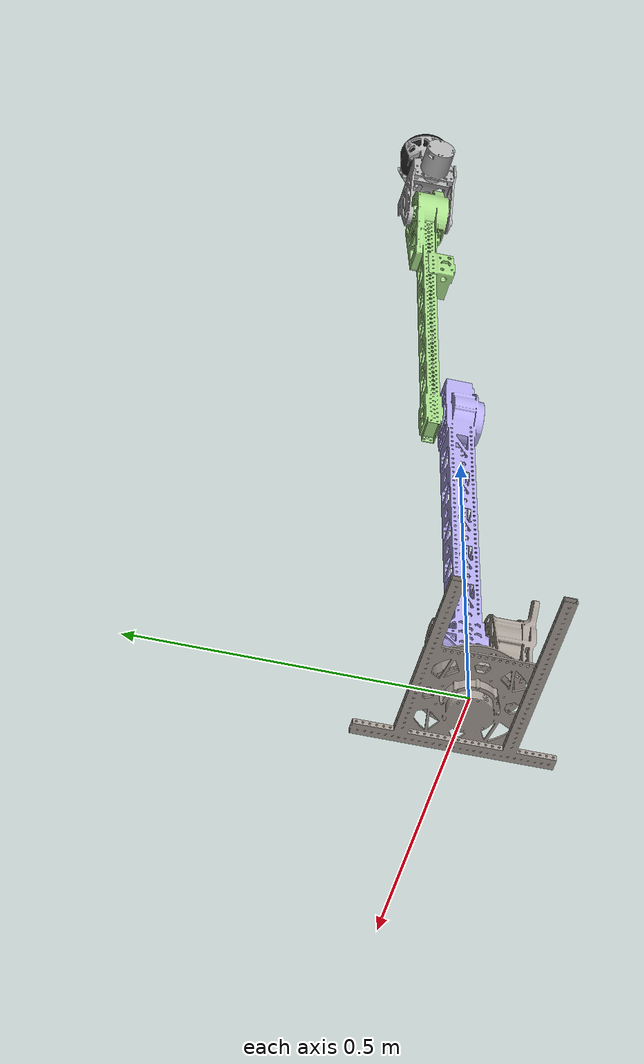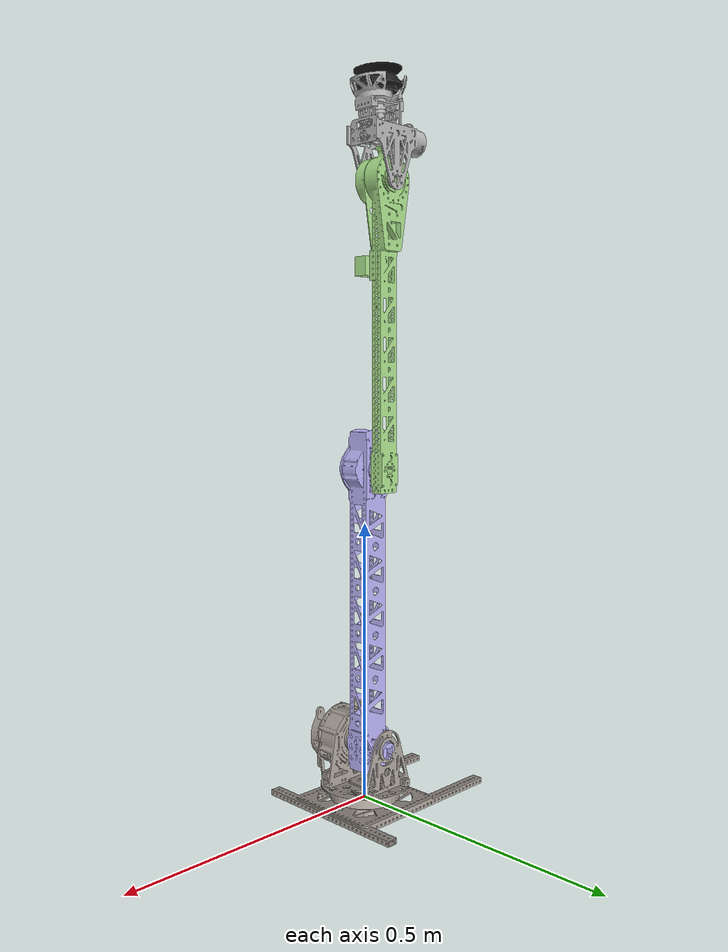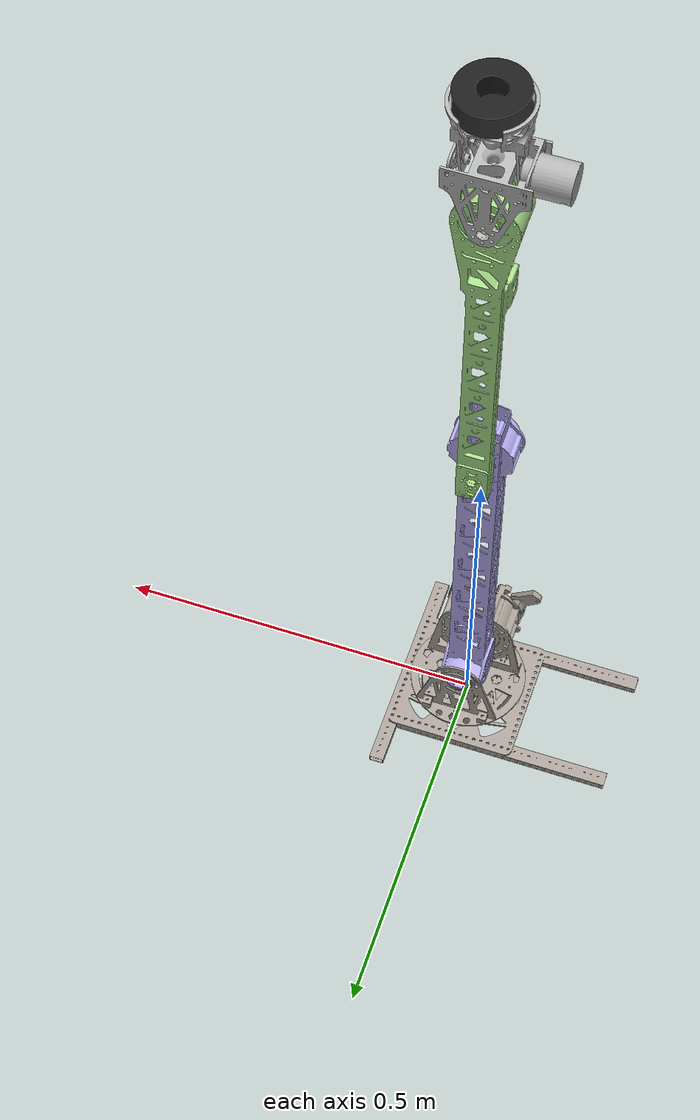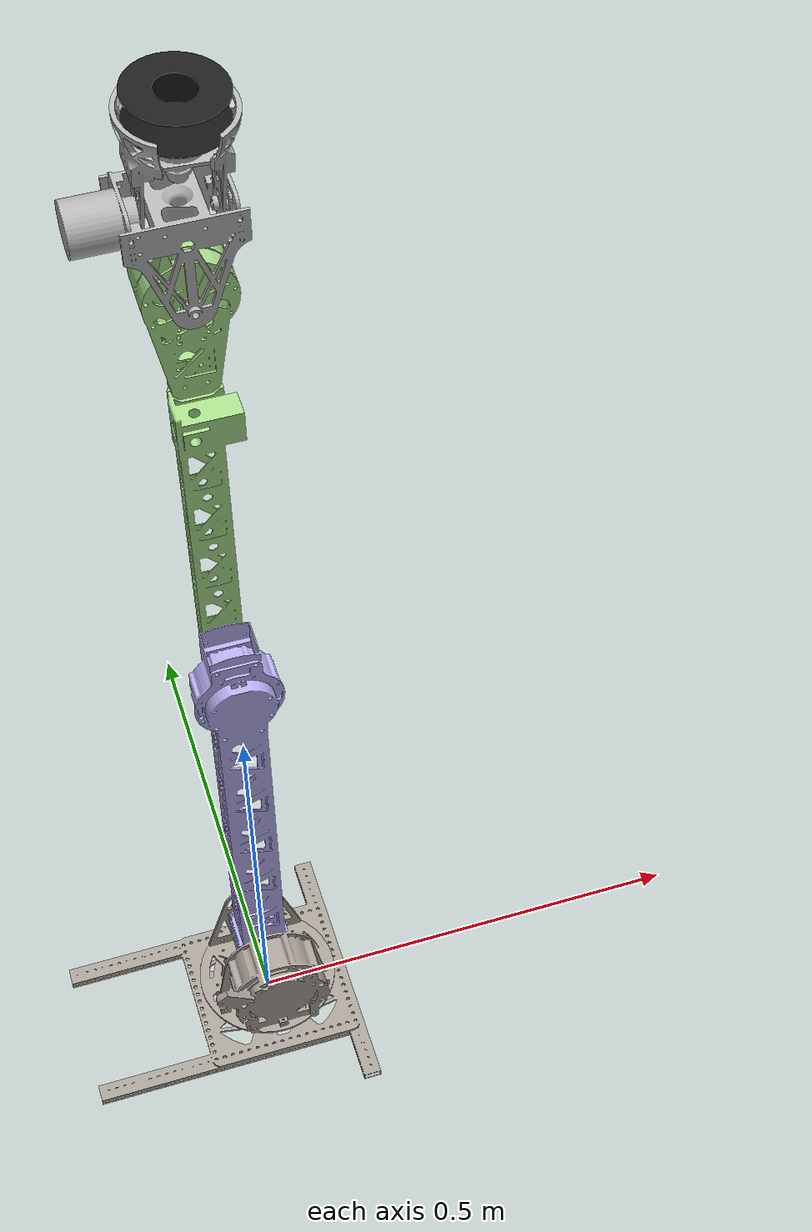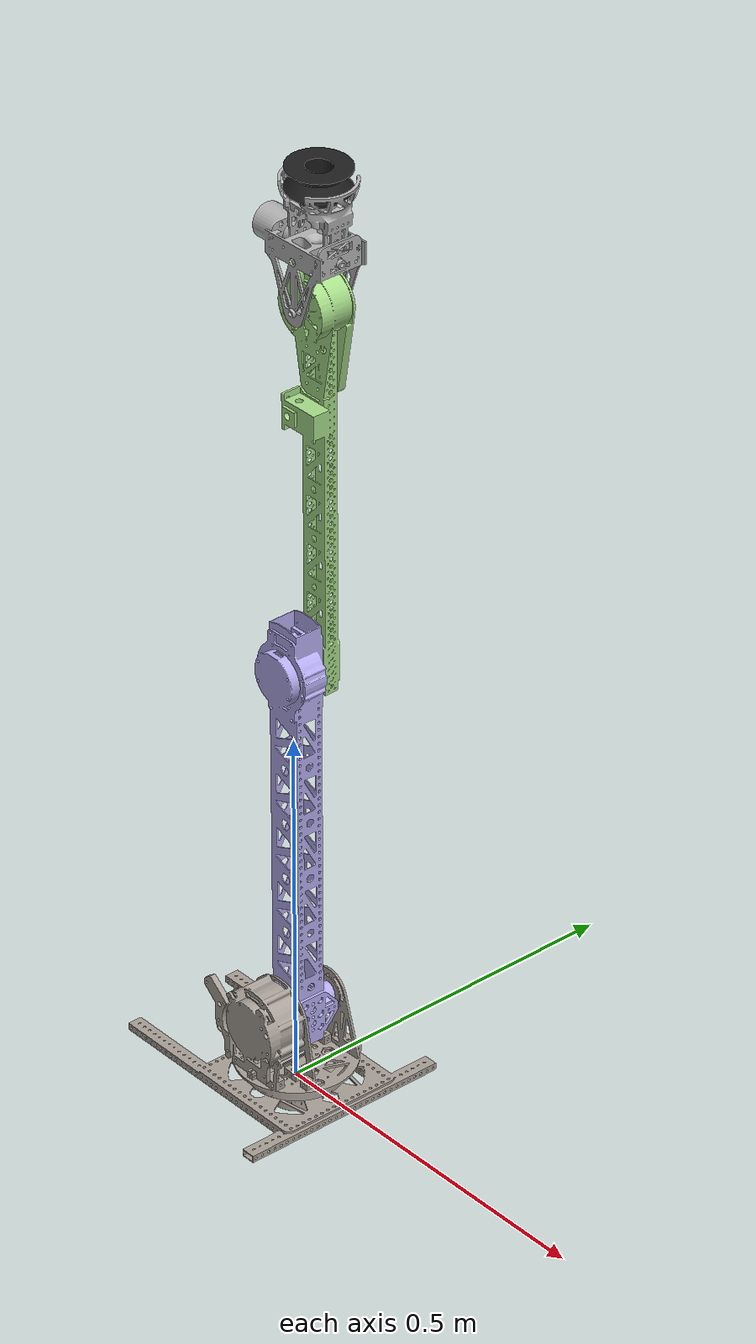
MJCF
<mujoco model="robotic_arm">
  <compiler angle="radian" eulerseq="zyx" autolimits="true"/>
  <asset>
    <mesh name="base_link" file="base_link.STL" />
    <mesh name="link1" file="link1.STL" />
    <mesh name="link2" file="link2.STL" />
    <mesh name="link3" file="link3.STL" />
    <mesh name="link4" file="link4.STL" />
    <mesh name="link5" file="link5.STL" />
    <mesh name="link6" file="link6.STL" />
  </asset>
  <worldbody>
    <body name="base_link">
      <inertial pos="-0.00360621702328832 5.13965852572684e-05 -0.00437548460570378" mass="0.905716018714615" fullinertia="0.00107148927922179 0.00144104333999584 0.00244792600293045 2.76094582641941e-06 -5.48596189361244e-07 2.22549999381976e-07" />
      <geom type="mesh" rgba="0.650980392156863 0.619607843137255 0.588235294117647 1" mesh="base_link" />
      <site name="tool_site" pos="0 0 0" size="0.01" />
      <body name="link1" pos="6.34132927793407e-05 -0.00167405073291106 0.0278500000000087" euler="0 0 0">
        <inertial pos="-0.000108374983294121 -0.0224173657123978 0.0295694936286941" mass="1.91180538368796" fullinertia="0.00130826953517784 0.00190867031535885 0.00177080127699075 1.3668660920291e-06 1.38971343647627e-05 1.26824657951645e-06" />
        <joint name="joint1" pos="0 0 0" axis="0 0 1" range="-3.14 3.14" actuatorfrcrange="-50 50" />
        <geom type="mesh" rgba="0.650980392156863 0.619607843137255 0.588235294117647 1" mesh="link1" />
        <body name="link2" pos="0.00565491862295636 0.0185517283813911 0.0710733482199691" euler="0 -1.5708 -1.5707963267949">
          <inertial pos="0.375032807584103 -0.00767142856848219 -0.0148750517361231" mass="1.09233144358037" fullinertia="0.000562645054167591 0.00825256907491947 0.00858584566040506 4.6355173743639e-07 -5.41332728898313e-05 -1.2040814647427e-06" />
          <joint name="joint2" pos="0 0 0" axis="0 0 -1" range="-1.57 1.57" actuatorfrcrange="-50 50" />
          <geom type="mesh" rgba="0.701960784313725 0.670588235294118 0.933333333333333 1" mesh="link2" />
          <body name="link3" pos="0.500001547205985 -0.00750000000003981 0.0418960557056171" euler="0 0 3.14159265358979">
            <inertial pos="0.396708620293581 -0.0009580050394698 0.0146574939500043" mass="0.750870225721497" fullinertia="0.000311759468382739 0.00280789973164969 0.00305821466409237 -4.43262109210123e-06 2.95134858752333e-06 -6.86575257856084e-07" />
            <joint name="joint3" pos="0 0 0" axis="0 0 -1" range="-2.8 2.8" actuatorfrcrange="-50 50" />
            <geom type="mesh" rgba="0.647058823529412 0.854901960784314 0.533333333333333 1" mesh="link3" />
            <body name="link4" pos="0.493372719987381 -0.000717203264851807 -0.0115" euler="1.5708 0 3.14159265358979">
              <inertial pos="0.0388635088998436 0.0683350036809159 -0.0302743627631186" mass="0.328855136025888" fullinertia="0.000130515381077466 8.67316206395657e-05 0.000124148178178434 -1.58524988603632e-07 2.47556859422373e-07 -5.55843117742173e-08" />
              <joint name="joint4" pos="0 0 0" axis="0 0 -1" range="-1.82 1.92" actuatorfrcrange="-100 100" />
              <geom type="mesh" rgba="0.698039215686274 0.698039215686274 0.698039215686274 1" mesh="link4" />
              <body name="link5" pos="0.0420000017681742 0.0760000060786439 -0.0298499999999999" euler="1.5708 0 1.5707963267949">
                <inertial pos="0.0409963218118283 -0.000737375741447381 -0.0449408930326747" mass="0.107863966418761" fullinertia="2.27221737578051e-05 2.42204415320291e-05 3.18656466025932e-05 2.69721515117386e-08 5.25283476817911e-07 5.16755491617417e-09" />
                <joint name="joint5" pos="0 0 0" axis="-0.0571545044239792 0 -0.998365345263972" range="-0.4 0.4" actuatorfrcrange="-50 50" />
                <geom type="mesh" rgba="0.698039215686274 0.698039215686274 0.698039215686274 1" mesh="link5" />
                <body name="link6" pos="0.109242825291171 -0.00191951430536242 -0.0510772149208419" euler="3.14159265358978 1.51361065936655 0.0171393597075962">
                  <inertial pos="3.46944695195361e-18 -1.17961196366423e-16 0.0196990985019004" mass="0.150213928644987" fullinertia="7.59512548879523e-05 7.59512548879523e-05 0.00011238690149753 6.71670657393058e-21 -1.05879118406788e-20 -2.26088313745444e-19" />
                  <joint name="joint6" pos="0 0 0" axis="0 0 1" range="-3.14 3.14" actuatorfrcrange="-50 50" />
                  <geom type="mesh" rgba="0.113725490196078 0.113725490196078 0.113725490196078 1" mesh="link6" />
                  <site name="ee_site" pos="0 0 0.05" size="0.01" />
                </body>
              </body>
            </body>
          </body>
        </body>
      </body>
    </body>
  </worldbody>
  <contact>
    <exclude body1="base_link" body2="link1" />
    <exclude body1="link1" body2="link2" />
    <exclude body1="link2" body2="link3" />
    <exclude body1="link3" body2="link4" />
    <exclude body1="link4" body2="link5" />
    <exclude body1="link5" body2="link6" />
  </contact>
  <actuator>
    <motor name="motor1" joint="joint1" gear="1" ctrllimited="true" ctrlrange="-50 50" />
    <motor name="motor2" joint="joint2" gear="1" ctrllimited="true" ctrlrange="-50 50" />
    <motor name="motor3" joint="joint3" gear="1" ctrllimited="true" ctrlrange="-50 50" />
    <motor name="motor4" joint="joint4" gear="1" ctrllimited="true" ctrlrange="-100 100" />
    <motor name="motor5" joint="joint5" gear="1" ctrllimited="true" ctrlrange="-50 50" />
    <motor name="motor6" joint="joint6" gear="1" ctrllimited="true" ctrlrange="-50 50" />
  </actuator>
  <sensor>
    <actuatorpos name="motor1_p" actuator="motor1" />
    <actuatorpos name="motor2_p" actuator="motor2" />
    <actuatorpos name="motor3_p" actuator="motor3" />
    <actuatorpos name="motor4_p" actuator="motor4" />
    <actuatorpos name="motor5_p" actuator="motor5" />
    <actuatorpos name="motor6_p" actuator="motor6" />
    <actuatorvel name="motor1_v" actuator="motor1" />
    <actuatorvel name="motor2_v" actuator="motor2" />
    <actuatorvel name="motor3_v" actuator="motor3" />
    <actuatorvel name="motor4_v" actuator="motor4" />
    <actuatorvel name="motor5_v" actuator="motor5" />
    <actuatorvel name="motor6_v" actuator="motor6" />
    <actuatorfrc name="motor1_f" actuator="motor1" noise="1e-3" />
    <actuatorfrc name="motor2_f" actuator="motor2" noise="1e-3" />
    <actuatorfrc name="motor3_f" actuator="motor3" noise="1e-3" />
    <actuatorfrc name="motor4_f" actuator="motor4" noise="1e-3" />
    <actuatorfrc name="motor5_f" actuator="motor5" noise="1e-3" />
    <actuatorfrc name="motor6_f" actuator="motor6" noise="1e-3" />
    <framepos name="ee_pos" objtype="site" objname="ee_site" />
    <framequat name="ee_quat" objtype="site" objname="ee_site" />
  </sensor>
</mujoco>
